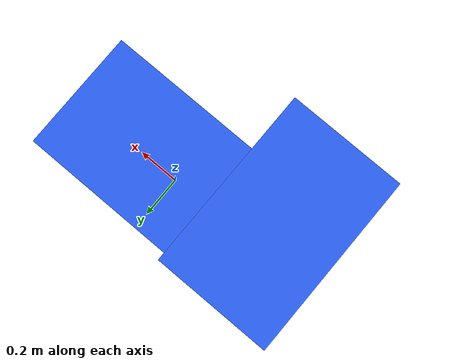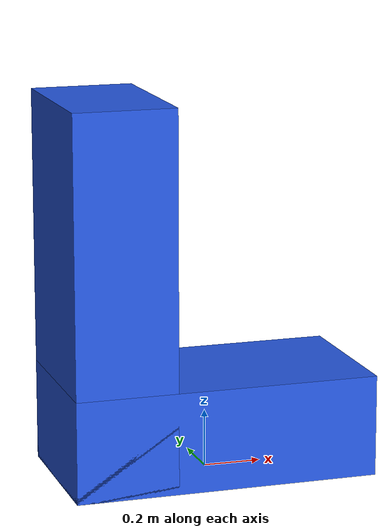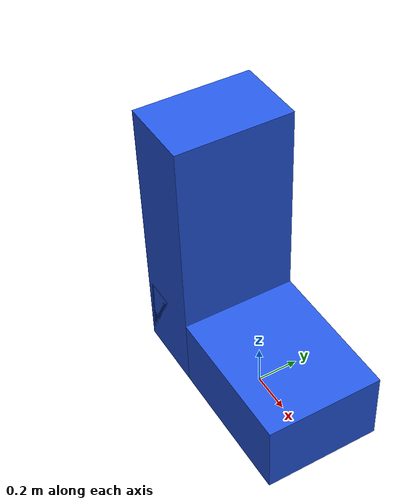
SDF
<?xml version="1.0"?>
<sdf version="1.7">
  <model name="xgc2_geom_l_block">
    <link name="body">
      <kinematic>true</kinematic>
      <gravity>false</gravity>
      <collision name="vertical">
        <pose>-0.35 0 0.65 0 0 0</pose>
        <geometry><box><size>0.35 0.55 1.3</size></box></geometry>
      </collision>
      <collision name="base">
        <pose>0 0 0.175 0 0 0</pose>
        <geometry><box><size>1.05 0.55 0.35</size></box></geometry>
      </collision>
      <visual name="vertical">
        <pose>-0.35 0 0.65 0 0 0</pose>
        <geometry><box><size>0.35 0.55 1.3</size></box></geometry>
        <material><ambient>0.15 0.35 0.9 1</ambient><diffuse>0.15 0.35 0.9 1</diffuse></material>
      </visual>
      <visual name="base">
        <pose>0 0 0.175 0 0 0</pose>
        <geometry><box><size>1.05 0.55 0.35</size></box></geometry>
        <material><ambient>0.15 0.35 0.9 1</ambient><diffuse>0.15 0.35 0.9 1</diffuse></material>
      </visual>
    </link>
  </model>
</sdf>
